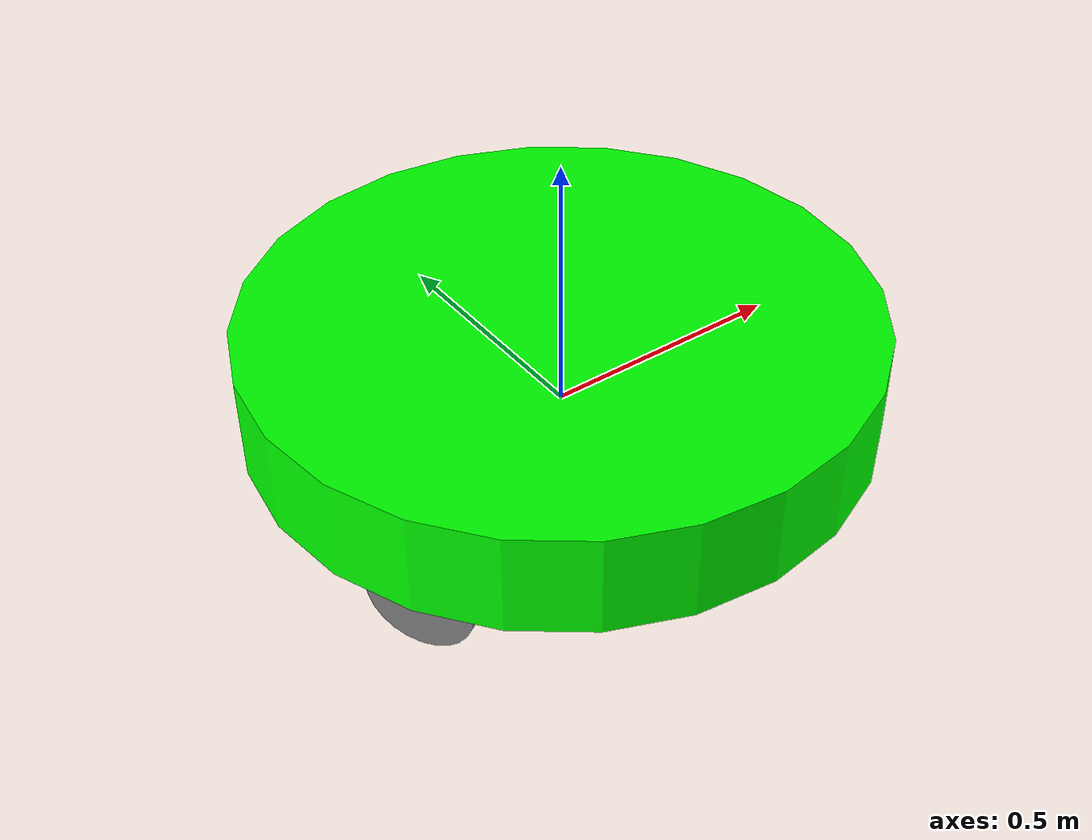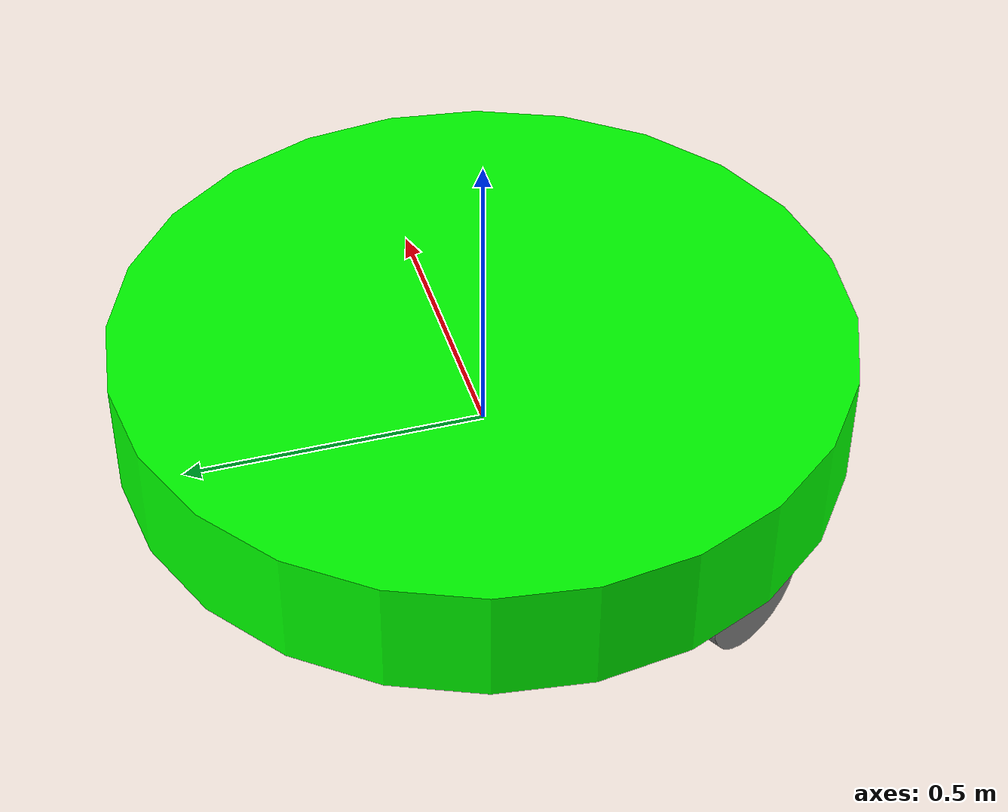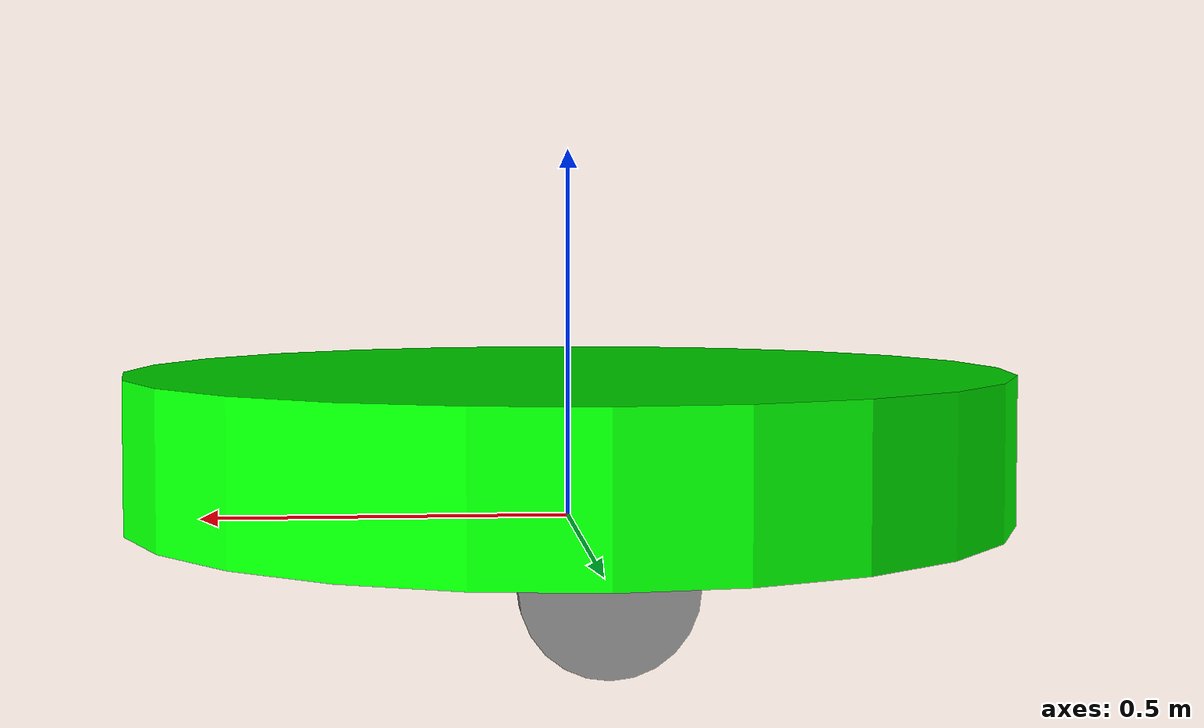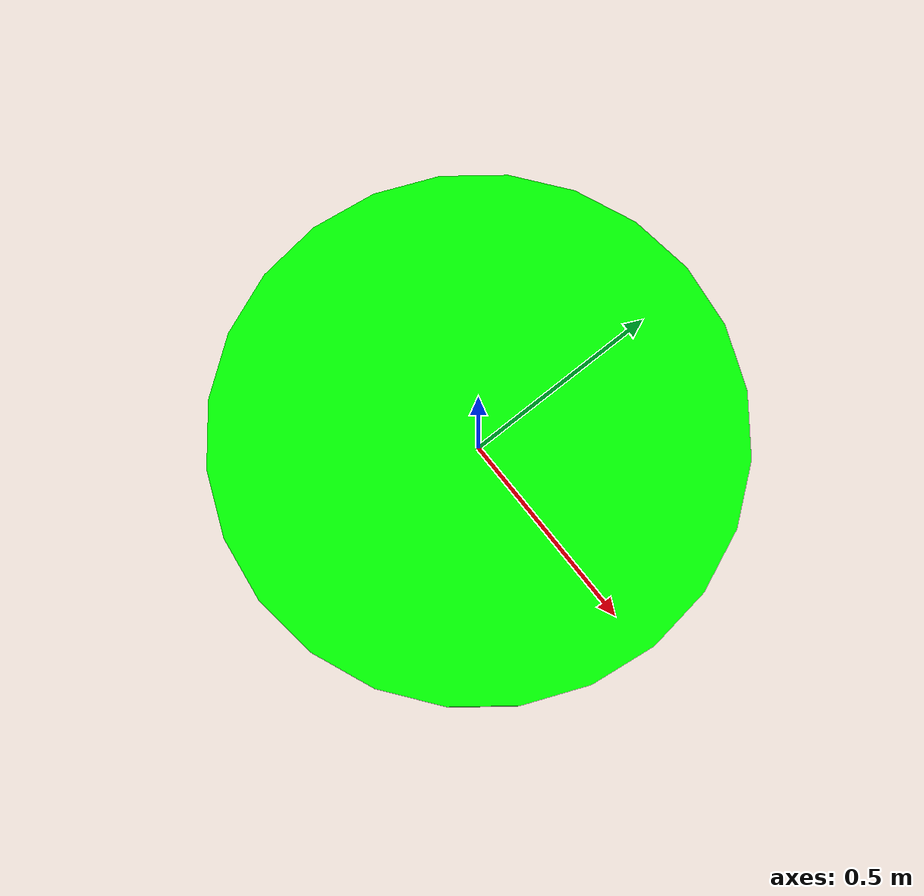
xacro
<?xml version="1.0"?>
<robot name="graphRobot" xmlns:xacro="http://www.ros.org/wiki/xacro">

    <!-- INCLUDES -->
    <xacro:include filename="commom_properties.xacro"/>
    <xacro:include filename="dimensions.xacro"/>
    <xacro:include filename="mobile_base_gazebo.xacro"/>

    <!-- WHEEL MACRO (ONLY radius, distance from center and angle in degrees) -->
    <xacro:macro name="add_wheel" params="wheel_name radius distance deg">

        <xacro:property name="rad" value="${deg * pi/180.0}"/>
        <xacro:property name="x" value="${distance * cos(rad)}"/>
        <xacro:property name="y" value="${distance * sin(rad)}"/>
        <xacro:property name="z" value="0"/>

        <xacro:property name="pitch" value="1.57"/>

        <link name="${wheel_name}_link">
            <visual>
                <geometry>
                    <cylinder radius="${radius}" length="0.05"/>
                </geometry>
                <origin xyz="0 0 0" rpy="0 ${pitch} 0"/>
                <material name="grey"/>
            </visual>

            <collision>
                <geometry>
                    <cylinder radius="${radius}" length="0.05"/>
                </geometry>
                <origin xyz="0 0 0" rpy="0 ${pitch} 0"/>
            </collision>

            <inertial>
                <mass value="0.5"/>
                <inertia ixx="0.001" ixy="0" ixz="0" iyy="0.001" iyz="0" izz="0.001"/>
            </inertial>
        </link>

        <joint name="${wheel_name}_joint" type="continuous">
            <parent link="base_link"/>
            <child link="${wheel_name}_link"/>
            <origin xyz="${x} ${y} ${z}" rpy="0 0 ${rad}"/>
            <axis xyz="0 1 0"/>
        </joint>

    </xacro:macro>

    <!-- BASE -->
    <link name="base_footprint"/>

<gazebo>
    <plugin
        filename="gz-sim-odometry-publisher-system"
        name="gz::sim::systems::OdometryPublisher">

        <update_frequency>50</update_frequency>

        <frame_id>robot4/base_link</frame_id>

        <odom_frame_id>world</odom_frame_id>

    </plugin>
</gazebo>

    <joint name="base_joint" type="fixed">
        <parent link="base_footprint"/>
        <child link="base_link"/>
        <origin xyz="0 0 0" rpy="0 0 0"/>
    </joint>

    <link name="base_link">
        <visual>
            <geometry>
                <cylinder radius="${base_radius}" length="${base_height}"/>
            </geometry>
            <origin xyz="0 0 ${base_height/2}" rpy="0 0 0"/>
            <material name="green"/>
        </visual>

        <collision>
            <geometry>
                <cylinder radius="${base_radius}" length="${base_height}"/>
            </geometry>
            <origin xyz="0 0 ${base_height/2}" rpy="0 0 0"/>
        </collision>

        <xacro:cylinder_inertia
            m="1.0"
            r="${base_radius}"
            h="${base_height}"
            xyz="0 0 ${base_height/2}"
            rpy="0 0 0"/>
    </link>

    <!-- 3 WHEELS DEFINED USING POLAR COORDINATES -->
    <xacro:add_wheel wheel_name="wheel_front"  radius="0.1" distance="0.55" deg="90"/>
    <xacro:add_wheel wheel_name="wheel_left"   radius="0.1" distance="0.55" deg="210"/>
    <xacro:add_wheel wheel_name="wheel_right"  radius="0.1" distance="0.55" deg="330"/>

</robot>

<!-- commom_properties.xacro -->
<robot xmlns:xacro="http://www.ros.org.wiki/xacro">

    <material name="green">
        <color rgba = "0 1 0 1"/>
    </material>

    <material name="grey">
        <color rgba = "0.5 0.5 0.5 1"/>
    </material>

     <xacro:macro name="box_inertia" params="m l w h xyz rpy">
        <inertial>
            <origin xyz="${xyz}" rpy="${rpy}"/>
            <mass value="${m}"/>
            <inertia    ixx="${(m/12.0)*(w*w+h*h)}" ixy="0.0" ixz="0.0"
                        iyy="${(m/12.0)*(l*l+h*h)}" iyz="0.0"
                        izz="${(m/12.0)*(l*l+w*w)}"/>
        </inertial>
    </xacro:macro>

    <xacro:macro name="cylinder_inertia" params="m r h xyz rpy">
        <inertial>
            <origin xyz="${xyz}" rpy="${rpy}"/>
            <mass value="${m}"/>
            <inertia ixx="${(m/12.0)*(3*r*r+h*h)}" ixy="0.0" ixz="0.0"
                    iyy="${(m/12.0)*(3*r*r+h*h)}" iyz="0.0"
                    izz="${(m/2.0)*(r*r)}"/>
        </inertial>
    </xacro:macro>

    <xacro:macro name="sphere_inertia" params="m r xyz rpy">
        <inertial>
            <origin xyz="${xyz}" rpy="${rpy}"/>
            <mass value="${m}"/>
            <inertia ixx="${(2.0*m/5.0)*(r*r)}" ixy="0.0" ixz="0.0"
                    iyy="${(2.0*m/5.0)*(r*r)}" iyz="0.0"
                    izz="${(2.0*m/5.0)*(r*r)}"/>
        </inertial>
    </xacro:macro>

</robot>

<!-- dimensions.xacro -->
<robot xmlns:xacro="http://www.ros.org.wiki/xacro">

    <!-- PROPERTIES -->
    <xacro:property name="base_radius" value="0.6"/>
    <xacro:property name="base_height" value="0.2"/>

</robot>
